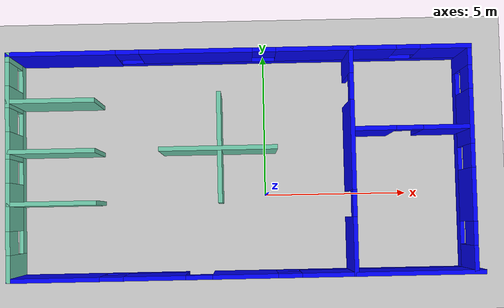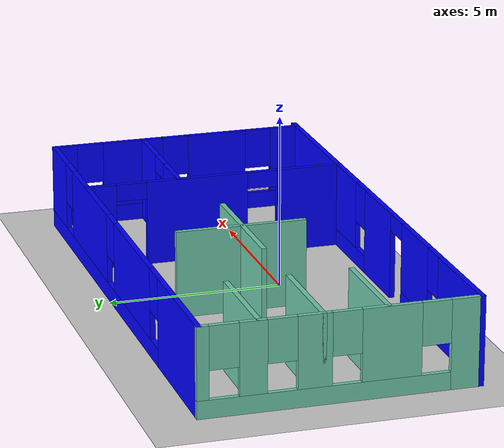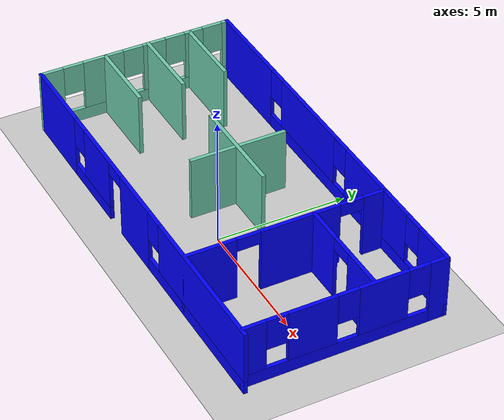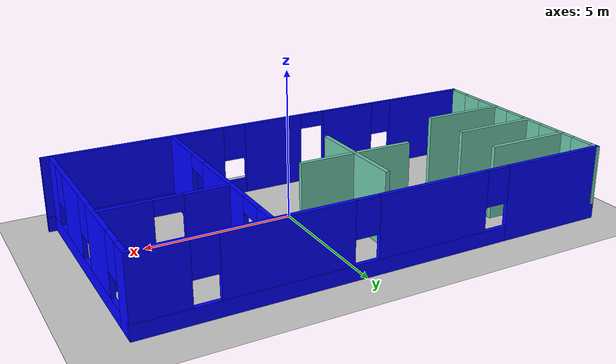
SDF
<sdf version="1.6">
 <world name="default">
  <light name="sun" type="directional">
   <pose>0 0 10 0 -0 0</pose>
   <diffuse>0.8 0.8 0.8 1</diffuse>
   <specular>0.2 0.2 0.2 1</specular>
   <attenuation>
    <range>1000</range>
    <constant>0.9</constant>
    <linear>0.01</linear>
    <quadratic>0.001</quadratic>
   </attenuation>
   <direction>-0.5 0.1 -0.9</direction>
  </light>
  <model name="ground_plane">
   <static>1</static>
   <link name="link">
    <collision name="collision">
     <geometry><plane><normal>0 0 1</normal><size>100 100</size></plane></geometry>
     <surface>
      <contact><collide_bitmask>65535</collide_bitmask></contact>
      <friction><ode><mu>100</mu><mu2>50</mu2></ode></friction>
     </surface>
    </collision>
    <visual name="visual">
     <cast_shadows>0</cast_shadows>
     <geometry><plane><normal>0 0 1</normal><size>100 100</size></plane></geometry>
     <material>
      <script><uri>file://media/materials/scripts/gazebo.material</uri><name>Gazebo/Grey</name></script>
     </material>
    </visual>
   </link>
  </model>
  <gravity>0 0 -9.8</gravity>
  <magnetic_field>6e-06 2.3e-05 -4.2e-05</magnetic_field>
  <atmosphere type="adiabatic"/>
  <physics name="default_physics" default="0" type="ode">
   <max_step_size>0.001</max_step_size>
   <real_time_factor>1</real_time_factor>
   <real_time_update_rate>1000</real_time_update_rate>
  </physics>
  <scene><ambient>0.4 0.4 0.4 1</ambient><background>0.7 0.7 0.7 1</background><shadows>1</shadows></scene>
  <spherical_coordinates>
   <surface_model>EARTH_WGS84</surface_model>
   <latitude_deg>0</latitude_deg>
   <longitude_deg>0</longitude_deg>
   <elevation>0</elevation>
   <heading_deg>0</heading_deg>
  </spherical_coordinates>
  <model name="greenbluebuilding">
   <pose>-0.750661 1.06885 0 0 -0 0</pose>
   <link name="Wall_11">
    <pose>-0.125 3.8 0 0 -0 0</pose>
    <visual name="Wall_11_Visual_0">
     <pose>-6.01588 0 1.25 0 -0 0</pose>
     <geometry><box><size>3.71823 0.15 2.5</size></box></geometry>
     <material>
      <script><uri>file://media/materials/scripts/gazebo.material</uri><name>Gazebo/Grey</name></script>
      <ambient>0 0 1 1</ambient>
     </material>
     <meta><layer>0</layer></meta>
    </visual>
    <collision name="Wall_11_Collision_0">
     <geometry><box><size>3.71823 0.15 2.5</size></box></geometry>
     <pose>-6.01588 0 1.25 0 -0 0</pose>
    </collision>
    <visual name="Wall_11_Visual_1">
     <pose>1.85912 0 0.25 0 -0 0</pose>
     <geometry><box><size>12.0318 0.15 0.5</size></box></geometry>
     <material>
      <script><uri>file://media/materials/scripts/gazebo.material</uri><name>Gazebo/Grey</name></script>
      <ambient>0 0 1 1</ambient>
     </material>
     <meta><layer>0</layer></meta>
    </visual>
    <collision name="Wall_11_Collision_1">
     <geometry><box><size>12.0318 0.15 0.5</size></box></geometry>
     <pose>1.85912 0 0.25 0 -0 0</pose>
    </collision>
    <visual name="Wall_11_Visual_2">
     <pose>-1.44255 0 1.5 0 -0 0</pose>
     <geometry><box><size>3.82843 0.15 2</size></box></geometry>
     <material>
      <script><uri>file://media/materials/scripts/gazebo.material</uri><name>Gazebo/Grey</name></script>
      <ambient>0 0 1 1</ambient>
     </material>
     <meta><layer>0</layer></meta>
    </visual>
    <collision name="Wall_11_Collision_2">
     <geometry><box><size>3.82843 0.15 2</size></box></geometry>
     <pose>-1.44255 0 1.5 0 -0 0</pose>
    </collision>
    <visual name="Wall_11_Visual_3">
     <pose>3.30558 0 1.5 0 -0 0</pose>
     <geometry><box><size>4.06784 0.15 2</size></box></geometry>
     <material>
      <script><uri>file://media/materials/scripts/gazebo.material</uri><name>Gazebo/Grey</name></script>
      <ambient>0 0 1 1</ambient>
     </material>
     <meta><layer>0</layer></meta>
    </visual>
    <collision name="Wall_11_Collision_3">
     <geometry><box><size>4.06784 0.15 2</size></box></geometry>
     <pose>3.30558 0 1.5 0 -0 0</pose>
    </collision>
    <visual name="Wall_11_Visual_4">
     <pose>7.00725 0 1.5 0 -0 0</pose>
     <geometry><box><size>1.7355 0.15 2</size></box></geometry>
     <material>
      <script><uri>file://media/materials/scripts/gazebo.material</uri><name>Gazebo/Grey</name></script>
      <ambient>0 0 1 1</ambient>
     </material>
     <meta><layer>0</layer></meta>
    </visual>
    <collision name="Wall_11_Collision_4">
     <geometry><box><size>1.7355 0.15 2</size></box></geometry>
     <pose>7.00725 0 1.5 0 -0 0</pose>
    </collision>
    <visual name="Wall_11_Visual_5">
     <pose>-3.75677 0 1.9 0 -0 0</pose>
     <geometry><box><size>0.8 0.15 1.2</size></box></geometry>
     <material>
      <script><uri>file://media/materials/scripts/gazebo.material</uri><name>Gazebo/Grey</name></script>
      <ambient>0 0 1 1</ambient>
     </material>
     <meta><layer>0</layer></meta>
    </visual>
    <collision name="Wall_11_Collision_5">
     <geometry><box><size>0.8 0.15 1.2</size></box></geometry>
     <pose>-3.75677 0 1.9 0 -0 0</pose>
    </collision>
    <visual name="Wall_11_Visual_6">
     <pose>0.871665 0 1.9 0 -0 0</pose>
     <geometry><box><size>0.8 0.15 1.2</size></box></geometry>
     <material>
      <script><uri>file://media/materials/scripts/gazebo.material</uri><name>Gazebo/Grey</name></script>
      <ambient>0 0 1 1</ambient>
     </material>
     <meta><layer>0</layer></meta>
    </visual>
    <collision name="Wall_11_Collision_6">
     <geometry><box><size>0.8 0.15 1.2</size></box></geometry>
     <pose>0.871665 0 1.9 0 -0 0</pose>
    </collision>
    <visual name="Wall_11_Visual_7">
     <pose>5.7395 0 1.9 0 -0 0</pose>
     <geometry><box><size>0.8 0.15 1.2</size></box></geometry>
     <material>
      <script><uri>file://media/materials/scripts/gazebo.material</uri><name>Gazebo/Grey</name></script>
      <ambient>0 0 1 1</ambient>
     </material>
     <meta><layer>0</layer></meta>
    </visual>
    <collision name="Wall_11_Collision_7">
     <geometry><box><size>0.8 0.15 1.2</size></box></geometry>
     <pose>5.7395 0 1.9 0 -0 0</pose>
    </collision>
   </link>
   <link name="Wall_12">
    <pose>7.675 0 0 0 0 -1.5708</pose>
    <visual name="Wall_12_Visual_0">
     <pose>-3.50932 0 1.25 0 -0 0</pose>
     <geometry><box><size>0.731351 0.15 2.5</size></box></geometry>
     <material>
      <script><uri>file://media/materials/scripts/gazebo.material</uri><name>Gazebo/Grey</name></script>
      <ambient>0 0 1 1</ambient>
     </material>
     <meta><layer>0</layer></meta>
    </visual>
    <collision name="Wall_12_Collision_0">
     <geometry><box><size>0.731351 0.15 2.5</size></box></geometry>
     <pose>-3.50932 0 1.25 0 -0 0</pose>
    </collision>
    <visual name="Wall_12_Visual_1">
     <pose>0.365676 0 0.25 0 -0 0</pose>
     <geometry><box><size>7.01865 0.15 0.5</size></box></geometry>
     <material>
      <script><uri>file://media/materials/scripts/gazebo.material</uri><name>Gazebo/Grey</name></script>
      <ambient>0 0 1 1</ambient>
     </material>
     <meta><layer>0</layer></meta>
    </visual>
    <collision name="Wall_12_Collision_1">
     <geometry><box><size>7.01865 0.15 0.5</size></box></geometry>
     <pose>0.365676 0 0.25 0 -0 0</pose>
    </collision>
    <visual name="Wall_12_Visual_2">
     <pose>-1.41364 0 1.5 0 -0 0</pose>
     <geometry><box><size>1.86002 0.15 2</size></box></geometry>
     <material>
      <script><uri>file://media/materials/scripts/gazebo.material</uri><name>Gazebo/Grey</name></script>
      <ambient>0 0 1 1</ambient>
     </material>
     <meta><layer>0</layer></meta>
    </visual>
    <collision name="Wall_12_Collision_2">
     <geometry><box><size>1.86002 0.15 2</size></box></geometry>
     <pose>-1.41364 0 1.5 0 -0 0</pose>
    </collision>
    <visual name="Wall_12_Visual_3">
     <pose>1.21978 0 1.5 0 -0 0</pose>
     <geometry><box><size>1.80682 0.15 2</size></box></geometry>
     <material>
      <script><uri>file://media/materials/scripts/gazebo.material</uri><name>Gazebo/Grey</name></script>
      <ambient>0 0 1 1</ambient>
     </material>
     <meta><layer>0</layer></meta>
    </visual>
    <collision name="Wall_12_Collision_3">
     <geometry><box><size>1.80682 0.15 2</size></box></geometry>
     <pose>1.21978 0 1.5 0 -0 0</pose>
    </collision>
    <visual name="Wall_12_Visual_4">
     <pose>3.39909 0 1.5 0 -0 0</pose>
     <geometry><box><size>0.95181 0.15 2</size></box></geometry>
     <material>
      <script><uri>file://media/materials/scripts/gazebo.material</uri><name>Gazebo/Grey</name></script>
      <ambient>0 0 1 1</ambient>
     </material>
     <meta><layer>0</layer></meta>
    </visual>
    <collision name="Wall_12_Collision_4">
     <geometry><box><size>0.95181 0.15 2</size></box></geometry>
     <pose>3.39909 0 1.5 0 -0 0</pose>
    </collision>
    <visual name="Wall_12_Visual_5">
     <pose>-2.74365 0 1.9 0 -0 0</pose>
     <geometry><box><size>0.8 0.15 1.2</size></box></geometry>
     <material>
      <script><uri>file://media/materials/scripts/gazebo.material</uri><name>Gazebo/Grey</name></script>
      <ambient>0 0 1 1</ambient>
     </material>
     <meta><layer>0</layer></meta>
    </visual>
    <collision name="Wall_12_Collision_5">
     <geometry><box><size>0.8 0.15 1.2</size></box></geometry>
     <pose>-2.74365 0 1.9 0 -0 0</pose>
    </collision>
    <visual name="Wall_12_Visual_6">
     <pose>-0.083629 0 1.9 0 -0 0</pose>
     <geometry><box><size>0.8 0.15 1.2</size></box></geometry>
     <material>
      <script><uri>file://media/materials/scripts/gazebo.material</uri><name>Gazebo/Grey</name></script>
      <ambient>0 0 1 1</ambient>
     </material>
     <meta><layer>0</layer></meta>
    </visual>
    <collision name="Wall_12_Collision_6">
     <geometry><box><size>0.8 0.15 1.2</size></box></geometry>
     <pose>-0.083629 0 1.9 0 -0 0</pose>
    </collision>
    <visual name="Wall_12_Visual_7">
     <pose>2.52319 0 1.9 0 -0 0</pose>
     <geometry><box><size>0.8 0.15 1.2</size></box></geometry>
     <material>
      <script><uri>file://media/materials/scripts/gazebo.material</uri><name>Gazebo/Grey</name></script>
      <ambient>0 0 1 1</ambient>
     </material>
     <meta><layer>0</layer></meta>
    </visual>
    <collision name="Wall_12_Collision_7">
     <geometry><box><size>0.8 0.15 1.2</size></box></geometry>
     <pose>2.52319 0 1.9 0 -0 0</pose>
    </collision>
   </link>
   <link name="Wall_14">
    <collision name="Wall_14_Collision">
     <geometry><box><size>3 0.15 2.5</size></box></geometry>
     <pose>0 0 1.25 0 -0 0</pose>
    </collision>
    <visual name="Wall_14_Visual">
     <pose>0 0 1.25 0 -0 0</pose>
     <geometry><box><size>3 0.15 2.5</size></box></geometry>
     <material>
      <script><uri>file://media/materials/scripts/gazebo.material</uri><name>Gazebo/Grey</name></script>
      <ambient>0.435294 0.796078 0.67451 1</ambient>
     </material>
     <meta><layer>0</layer></meta>
    </visual>
    <pose>-6.5 2.21164 0 0 -0 0</pose>
   </link>
   <link name="Wall_16">
    <collision name="Wall_16_Collision">
     <geometry><box><size>3 0.15 2.5</size></box></geometry>
     <pose>0 0 1.25 0 -0 0</pose>
    </collision>
    <visual name="Wall_16_Visual">
     <pose>0 0 1.25 0 -0 0</pose>
     <geometry><box><size>3 0.15 2.5</size></box></geometry>
     <material>
      <script><uri>file://media/materials/scripts/gazebo.material</uri><name>Gazebo/Grey</name></script>
      <ambient>0.435294 0.796078 0.67451 1</ambient>
     </material>
     <meta><layer>0</layer></meta>
    </visual>
    <pose>-6.5 0.509232 0 0 -0 0</pose>
   </link>
   <link name="Wall_18">
    <collision name="Wall_18_Collision">
     <geometry><box><size>3 0.15 2.5</size></box></geometry>
     <pose>0 0 1.25 0 -0 0</pose>
    </collision>
    <visual name="Wall_18_Visual">
     <pose>0 0 1.25 0 -0 0</pose>
     <geometry><box><size>3 0.15 2.5</size></box></geometry>
     <material>
      <script><uri>file://media/materials/scripts/gazebo.material</uri><name>Gazebo/Grey</name></script>
      <ambient>0.435294 0.796078 0.67451 1</ambient>
     </material>
     <meta><layer>0</layer></meta>
    </visual>
    <pose>-6.4734 -1.24638 0 0 -0 0</pose>
   </link>
   <link name="Wall_20">
    <collision name="Wall_20_Collision">
     <geometry><box><size>4 0.15 2.5</size></box></geometry>
     <pose>0 0 1.25 0 -0 0</pose>
    </collision>
    <visual name="Wall_20_Visual">
     <pose>0 0 1.25 0 -0 0</pose>
     <geometry><box><size>4 0.15 2.5</size></box></geometry>
     <material>
      <script><uri>file://media/materials/scripts/gazebo.material</uri><name>Gazebo/Grey</name></script>
      <ambient>0.435294 0.796078 0.67451 1</ambient>
     </material>
     <meta><layer>0</layer></meta>
    </visual>
    <pose>-0.866161 0.509232 0 0 -0 0</pose>
   </link>
   <link name="Wall_22">
    <collision name="Wall_22_Collision">
     <geometry><box><size>3.75 0.15 2.5</size></box></geometry>
     <pose>0 0 1.25 0 -0 0</pose>
    </collision>
    <visual name="Wall_22_Visual">
     <pose>0 0 1.25 0 -0 0</pose>
     <geometry><box><size>3.75 0.15 2.5</size></box></geometry>
     <material>
      <script><uri>file://media/materials/scripts/gazebo.material</uri><name>Gazebo/Grey</name></script>
      <ambient>0.435294 0.796078 0.67451 1</ambient>
     </material>
     <meta><layer>0</layer></meta>
    </visual>
    <pose>-0.822747 0.544646 0 0 0 -1.5708</pose>
   </link>
   <link name="Wall_24">
    <pose>3.67269 0 0 0 -0 1.5708</pose>
    <visual name="Wall_24_Visual_0">
     <pose>-2.87879 0 1.25 0 -0 0</pose>
     <geometry><box><size>1.99242 0.15 2.5</size></box></geometry>
     <material>
      <script><uri>file://media/materials/scripts/gazebo.material</uri><name>Gazebo/Grey</name></script>
      <ambient>0 0 1 1</ambient>
     </material>
     <meta><layer>0</layer></meta>
    </visual>
    <collision name="Wall_24_Collision_0">
     <geometry><box><size>1.99242 0.15 2.5</size></box></geometry>
     <pose>-2.87879 0 1.25 0 -0 0</pose>
    </collision>
    <visual name="Wall_24_Visual_1">
     <pose>0.535832 0 1.25 0 -0 0</pose>
     <geometry><box><size>3.03683 0.15 2.5</size></box></geometry>
     <material>
      <script><uri>file://media/materials/scripts/gazebo.material</uri><name>Gazebo/Grey</name></script>
      <ambient>0 0 1 1</ambient>
     </material>
     <meta><layer>0</layer></meta>
    </visual>
    <collision name="Wall_24_Collision_1">
     <geometry><box><size>3.03683 0.15 2.5</size></box></geometry>
     <pose>0.535832 0 1.25 0 -0 0</pose>
    </collision>
    <visual name="Wall_24_Visual_2">
     <pose>3.41462 0 1.25 0 -0 0</pose>
     <geometry><box><size>0.920753 0.15 2.5</size></box></geometry>
     <material>
      <script><uri>file://media/materials/scripts/gazebo.material</uri><name>Gazebo/Grey</name></script>
      <ambient>0 0 1 1</ambient>
     </material>
     <meta><layer>0</layer></meta>
    </visual>
    <collision name="Wall_24_Collision_2">
     <geometry><box><size>0.920753 0.15 2.5</size></box></geometry>
     <pose>3.41462 0 1.25 0 -0 0</pose>
    </collision>
    <visual name="Wall_24_Visual_3">
     <pose>-1.43258 0 2.25 0 -0 0</pose>
     <geometry><box><size>0.9 0.15 0.5</size></box></geometry>
     <material>
      <script><uri>file://media/materials/scripts/gazebo.material</uri><name>Gazebo/Grey</name></script>
      <ambient>0 0 1 1</ambient>
     </material>
     <meta><layer>0</layer></meta>
    </visual>
    <collision name="Wall_24_Collision_3">
     <geometry><box><size>0.9 0.15 0.5</size></box></geometry>
     <pose>-1.43258 0 2.25 0 -0 0</pose>
    </collision>
    <visual name="Wall_24_Visual_4">
     <pose>2.50425 0 2.25 0 -0 0</pose>
     <geometry><box><size>0.9 0.15 0.5</size></box></geometry>
     <material>
      <script><uri>file://media/materials/scripts/gazebo.material</uri><name>Gazebo/Grey</name></script>
      <ambient>0 0 1 1</ambient>
     </material>
     <meta><layer>0</layer></meta>
    </visual>
    <collision name="Wall_24_Collision_4">
     <geometry><box><size>0.9 0.15 0.5</size></box></geometry>
     <pose>2.50425 0 2.25 0 -0 0</pose>
    </collision>
   </link>
   <link name="Wall_26">
    <pose>5.65089 1.06784 0 0 -0 0</pose>
    <visual name="Wall_26_Visual_0">
     <pose>-1.25649 0 1.25 0 -0 0</pose>
     <geometry><box><size>1.48701 0.15 2.5</size></box></geometry>
     <material>
      <script><uri>file://media/materials/scripts/gazebo.material</uri><name>Gazebo/Grey</name></script>
      <ambient>0 0 1 1</ambient>
     </material>
     <meta><layer>0</layer></meta>
    </visual>
    <collision name="Wall_26_Collision_0">
     <geometry><box><size>1.48701 0.15 2.5</size></box></geometry>
     <pose>-1.25649 0 1.25 0 -0 0</pose>
    </collision>
    <visual name="Wall_26_Visual_1">
     <pose>1.19351 0 1.25 0 -0 0</pose>
     <geometry><box><size>1.61299 0.15 2.5</size></box></geometry>
     <material>
      <script><uri>file://media/materials/scripts/gazebo.material</uri><name>Gazebo/Grey</name></script>
      <ambient>0 0 1 1</ambient>
     </material>
     <meta><layer>0</layer></meta>
    </visual>
    <collision name="Wall_26_Collision_1">
     <geometry><box><size>1.61299 0.15 2.5</size></box></geometry>
     <pose>1.19351 0 1.25 0 -0 0</pose>
    </collision>
    <visual name="Wall_26_Visual_2">
     <pose>-0.062986 0 2.25 0 -0 0</pose>
     <geometry><box><size>0.9 0.15 0.5</size></box></geometry>
     <material>
      <script><uri>file://media/materials/scripts/gazebo.material</uri><name>Gazebo/Grey</name></script>
      <ambient>0 0 1 1</ambient>
     </material>
     <meta><layer>0</layer></meta>
    </visual>
    <collision name="Wall_26_Collision_2">
     <geometry><box><size>0.9 0.15 0.5</size></box></geometry>
     <pose>-0.062986 0 2.25 0 -0 0</pose>
    </collision>
   </link>
   <link name="Wall_7">
    <pose>0 -3.8 0 0 -0 0</pose>
    <visual name="Wall_7_Visual_0">
     <pose>-6.44679 0 1.25 0 -0 0</pose>
     <geometry><box><size>3.10643 0.15 2.5</size></box></geometry>
     <material>
      <script><uri>file://media/materials/scripts/gazebo.material</uri><name>Gazebo/Grey</name></script>
      <ambient>0 0 1 1</ambient>
     </material>
     <meta><layer>0</layer></meta>
    </visual>
    <collision name="Wall_7_Collision_0">
     <geometry><box><size>3.10643 0.15 2.5</size></box></geometry>
     <pose>-6.44679 0 1.25 0 -0 0</pose>
    </collision>
    <visual name="Wall_7_Visual_1">
     <pose>-0.026341 0 1.25 0 -0 0</pose>
     <geometry><box><size>2.18242 0.15 2.5</size></box></geometry>
     <material>
      <script><uri>file://media/materials/scripts/gazebo.material</uri><name>Gazebo/Grey</name></script>
      <ambient>0 0 1 1</ambient>
     </material>
     <meta><layer>0</layer></meta>
    </visual>
    <collision name="Wall_7_Collision_1">
     <geometry><box><size>2.18242 0.15 2.5</size></box></geometry>
     <pose>-0.026341 0 1.25 0 -0 0</pose>
    </collision>
    <visual name="Wall_7_Visual_2">
     <pose>-3.45556 0 0.25 0 -0 0</pose>
     <geometry><box><size>2.87602 0.15 0.5</size></box></geometry>
     <material>
      <script><uri>file://media/materials/scripts/gazebo.material</uri><name>Gazebo/Grey</name></script>
      <ambient>0 0 1 1</ambient>
     </material>
     <meta><layer>0</layer></meta>
    </visual>
    <collision name="Wall_7_Collision_2">
     <geometry><box><size>2.87602 0.15 0.5</size></box></geometry>
     <pose>-3.45556 0 0.25 0 -0 0</pose>
    </collision>
    <visual name="Wall_7_Visual_3">
     <pose>4.53244 0 0.25 0 -0 0</pose>
     <geometry><box><size>6.93513 0.15 0.5</size></box></geometry>
     <material>
      <script><uri>file://media/materials/scripts/gazebo.material</uri><name>Gazebo/Grey</name></script>
      <ambient>0 0 1 1</ambient>
     </material>
     <meta><layer>0</layer></meta>
    </visual>
    <collision name="Wall_7_Collision_3">
     <geometry><box><size>6.93513 0.15 0.5</size></box></geometry>
     <pose>4.53244 0 0.25 0 -0 0</pose>
    </collision>
    <visual name="Wall_7_Visual_4">
     <pose>-3.05556 0 1.5 0 -0 0</pose>
     <geometry><box><size>2.07602 0.15 2</size></box></geometry>
     <material>
      <script><uri>file://media/materials/scripts/gazebo.material</uri><name>Gazebo/Grey</name></script>
      <ambient>0 0 1 1</ambient>
     </material>
     <meta><layer>0</layer></meta>
    </visual>
    <collision name="Wall_7_Collision_4">
     <geometry><box><size>2.07602 0.15 2</size></box></geometry>
     <pose>-3.05556 0 1.5 0 -0 0</pose>
    </collision>
    <visual name="Wall_7_Visual_5">
     <pose>-3.05556 0 1.5 0 -0 0</pose>
     <geometry><box><size>2.07602 0.15 2</size></box></geometry>
     <material>
      <script><uri>file://media/materials/scripts/gazebo.material</uri><name>Gazebo/Grey</name></script>
      <ambient>0 0 1 1</ambient>
     </material>
     <meta><layer>0</layer></meta>
    </visual>
    <collision name="Wall_7_Collision_5">
     <geometry><box><size>2.07602 0.15 2</size></box></geometry>
     <pose>-3.05556 0 1.5 0 -0 0</pose>
    </collision>
    <visual name="Wall_7_Visual_6">
     <pose>4.93243 0 1.5 0 -0 0</pose>
     <geometry><box><size>6.13513 0.15 2</size></box></geometry>
     <material>
      <script><uri>file://media/materials/scripts/gazebo.material</uri><name>Gazebo/Grey</name></script>
      <ambient>0 0 1 1</ambient>
     </material>
     <meta><layer>0</layer></meta>
    </visual>
    <collision name="Wall_7_Collision_6">
     <geometry><box><size>6.13513 0.15 2</size></box></geometry>
     <pose>4.93243 0 1.5 0 -0 0</pose>
    </collision>
    <visual name="Wall_7_Visual_7">
     <pose>-4.49357 0 1.9 0 -0 0</pose>
     <geometry><box><size>0.8 0.15 1.2</size></box></geometry>
     <material>
      <script><uri>file://media/materials/scripts/gazebo.material</uri><name>Gazebo/Grey</name></script>
      <ambient>0 0 1 1</ambient>
     </material>
     <meta><layer>0</layer></meta>
    </visual>
    <collision name="Wall_7_Collision_7">
     <geometry><box><size>0.8 0.15 1.2</size></box></geometry>
     <pose>-4.49357 0 1.9 0 -0 0</pose>
    </collision>
    <visual name="Wall_7_Visual_8">
     <pose>1.46487 0 1.9 0 -0 0</pose>
     <geometry><box><size>0.8 0.15 1.2</size></box></geometry>
     <material>
      <script><uri>file://media/materials/scripts/gazebo.material</uri><name>Gazebo/Grey</name></script>
      <ambient>0 0 1 1</ambient>
     </material>
     <meta><layer>0</layer></meta>
    </visual>
    <collision name="Wall_7_Collision_8">
     <geometry><box><size>0.8 0.15 1.2</size></box></geometry>
     <pose>1.46487 0 1.9 0 -0 0</pose>
    </collision>
    <visual name="Wall_7_Visual_9">
     <pose>-1.56755 0 2.25 0 -0 0</pose>
     <geometry><box><size>0.9 0.15 0.5</size></box></geometry>
     <material>
      <script><uri>file://media/materials/scripts/gazebo.material</uri><name>Gazebo/Grey</name></script>
      <ambient>0 0 1 1</ambient>
     </material>
     <meta><layer>0</layer></meta>
    </visual>
    <collision name="Wall_7_Collision_9">
     <geometry><box><size>0.9 0.15 0.5</size></box></geometry>
     <pose>-1.56755 0 2.25 0 -0 0</pose>
    </collision>
    <visual name="Wall_7_Visual_10">
     <pose>-1.56755 0 2.25 0 -0 0</pose>
     <geometry><box><size>0.9 0.15 0.5</size></box></geometry>
     <material>
      <script><uri>file://media/materials/scripts/gazebo.material</uri><name>Gazebo/Grey</name></script>
      <ambient>0 0 1 1</ambient>
     </material>
     <meta><layer>0</layer></meta>
    </visual>
    <collision name="Wall_7_Collision_10">
     <geometry><box><size>0.9 0.15 0.5</size></box></geometry>
     <pose>-1.56755 0 2.25 0 -0 0</pose>
    </collision>
   </link>
   <link name="Wall_9">
    <pose>-7.925 0 0 0 -0 1.5708</pose>
    <visual name="Wall_9_Visual_0">
     <pose>-3.4124 0 1.25 0 -0 0</pose>
     <geometry><box><size>0.925209 0.15 2.5</size></box></geometry>
     <material>
      <script><uri>file://media/materials/scripts/gazebo.material</uri><name>Gazebo/Grey</name></script>
      <ambient>0.435294 0.796078 0.67451 1</ambient>
     </material>
     <meta><layer>0</layer></meta>
    </visual>
    <collision name="Wall_9_Collision_0">
     <geometry><box><size>0.925209 0.15 2.5</size></box></geometry>
     <pose>-3.4124 0 1.25 0 -0 0</pose>
    </collision>
    <visual name="Wall_9_Visual_1">
     <pose>0.462605 0 0.25 0 -0 0</pose>
     <geometry><box><size>6.82479 0.15 0.5</size></box></geometry>
     <material>
      <script><uri>file://media/materials/scripts/gazebo.material</uri><name>Gazebo/Grey</name></script>
      <ambient>0.435294 0.796078 0.67451 1</ambient>
     </material>
     <meta><layer>0</layer></meta>
    </visual>
    <collision name="Wall_9_Collision_1">
     <geometry><box><size>6.82479 0.15 0.5</size></box></geometry>
     <pose>0.462605 0 0.25 0 -0 0</pose>
    </collision>
    <visual name="Wall_9_Visual_2">
     <pose>-1.33948 0 1.5 0 -0 0</pose>
     <geometry><box><size>1.62062 0.15 2</size></box></geometry>
     <material>
      <script><uri>file://media/materials/scripts/gazebo.material</uri><name>Gazebo/Grey</name></script>
      <ambient>0.435294 0.796078 0.67451 1</ambient>
     </material>
     <meta><layer>0</layer></meta>
    </visual>
    <collision name="Wall_9_Collision_2">
     <geometry><box><size>1.62062 0.15 2</size></box></geometry>
     <pose>-1.33948 0 1.5 0 -0 0</pose>
    </collision>
    <visual name="Wall_9_Visual_3">
     <pose>0.735334 0 1.5 0 -0 0</pose>
     <geometry><box><size>0.929013 0.15 2</size></box></geometry>
     <material>
      <script><uri>file://media/materials/scripts/gazebo.material</uri><name>Gazebo/Grey</name></script>
      <ambient>0.435294 0.796078 0.67451 1</ambient>
     </material>
     <meta><layer>0</layer></meta>
    </visual>
    <collision name="Wall_9_Collision_3">
     <geometry><box><size>0.929013 0.15 2</size></box></geometry>
     <pose>0.735334 0 1.5 0 -0 0</pose>
    </collision>
    <visual name="Wall_9_Visual_4">
     <pose>2.37125 0 1.5 0 -0 0</pose>
     <geometry><box><size>0.742812 0.15 2</size></box></geometry>
     <material>
      <script><uri>file://media/materials/scripts/gazebo.material</uri><name>Gazebo/Grey</name></script>
      <ambient>0.435294 0.796078 0.67451 1</ambient>
     </material>
     <meta><layer>0</layer></meta>
    </visual>
    <collision name="Wall_9_Collision_4">
     <geometry><box><size>0.742812 0.15 2</size></box></geometry>
     <pose>2.37125 0 1.5 0 -0 0</pose>
    </collision>
    <visual name="Wall_9_Visual_5">
     <pose>3.70883 0 1.5 0 -0 0</pose>
     <geometry><box><size>0.332348 0.15 2</size></box></geometry>
     <material>
      <script><uri>file://media/materials/scripts/gazebo.material</uri><name>Gazebo/Grey</name></script>
      <ambient>0.435294 0.796078 0.67451 1</ambient>
     </material>
     <meta><layer>0</layer></meta>
    </visual>
    <collision name="Wall_9_Collision_5">
     <geometry><box><size>0.332348 0.15 2</size></box></geometry>
     <pose>3.70883 0 1.5 0 -0 0</pose>
    </collision>
    <visual name="Wall_9_Visual_6">
     <pose>-2.54979 0 1.9 0 -0 0</pose>
     <geometry><box><size>0.8 0.15 1.2</size></box></geometry>
     <material>
      <script><uri>file://media/materials/scripts/gazebo.material</uri><name>Gazebo/Grey</name></script>
      <ambient>0.435294 0.796078 0.67451 1</ambient>
     </material>
     <meta><layer>0</layer></meta>
    </visual>
    <collision name="Wall_9_Collision_6">
     <geometry><box><size>0.8 0.15 1.2</size></box></geometry>
     <pose>-2.54979 0 1.9 0 -0 0</pose>
    </collision>
    <visual name="Wall_9_Visual_7">
     <pose>-0.129173 0 1.9 0 -0 0</pose>
     <geometry><box><size>0.8 0.15 1.2</size></box></geometry>
     <material>
      <script><uri>file://media/materials/scripts/gazebo.material</uri><name>Gazebo/Grey</name></script>
      <ambient>0.435294 0.796078 0.67451 1</ambient>
     </material>
     <meta><layer>0</layer></meta>
    </visual>
    <collision name="Wall_9_Collision_7">
     <geometry><box><size>0.8 0.15 1.2</size></box></geometry>
     <pose>-0.129173 0 1.9 0 -0 0</pose>
    </collision>
    <visual name="Wall_9_Visual_8">
     <pose>1.59984 0 1.9 0 -0 0</pose>
     <geometry><box><size>0.8 0.15 1.2</size></box></geometry>
     <material>
      <script><uri>file://media/materials/scripts/gazebo.material</uri><name>Gazebo/Grey</name></script>
      <ambient>0.435294 0.796078 0.67451 1</ambient>
     </material>
     <meta><layer>0</layer></meta>
    </visual>
    <collision name="Wall_9_Collision_8">
     <geometry><box><size>0.8 0.15 1.2</size></box></geometry>
     <pose>1.59984 0 1.9 0 -0 0</pose>
    </collision>
    <visual name="Wall_9_Visual_9">
     <pose>3.14265 0 1.9 0 -0 0</pose>
     <geometry><box><size>0.8 0.15 1.2</size></box></geometry>
     <material>
      <script><uri>file://media/materials/scripts/gazebo.material</uri><name>Gazebo/Grey</name></script>
      <ambient>0.435294 0.796078 0.67451 1</ambient>
     </material>
     <meta><layer>0</layer></meta>
    </visual>
    <collision name="Wall_9_Collision_9">
     <geometry><box><size>0.8 0.15 1.2</size></box></geometry>
     <pose>3.14265 0 1.9 0 -0 0</pose>
    </collision>
   </link>
   <static>1</static>
  </model>
 </world>
</sdf>
